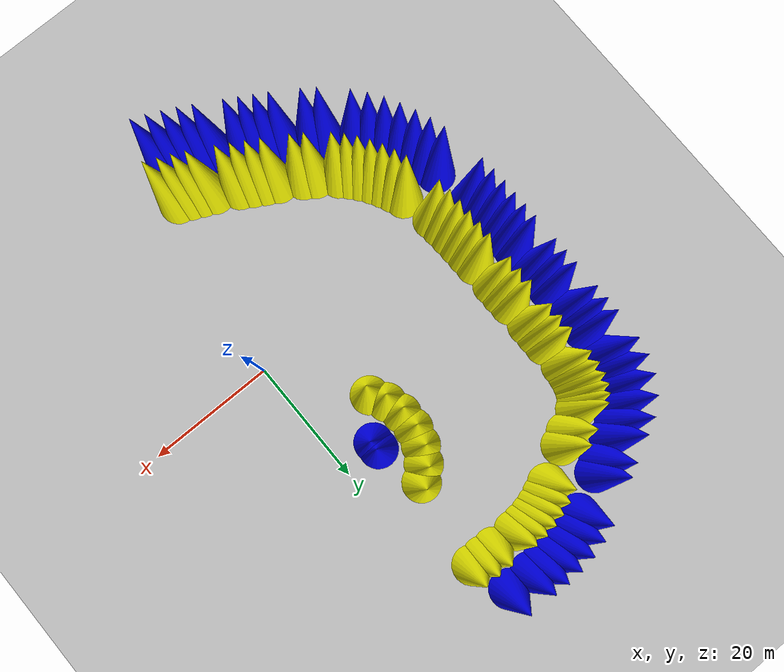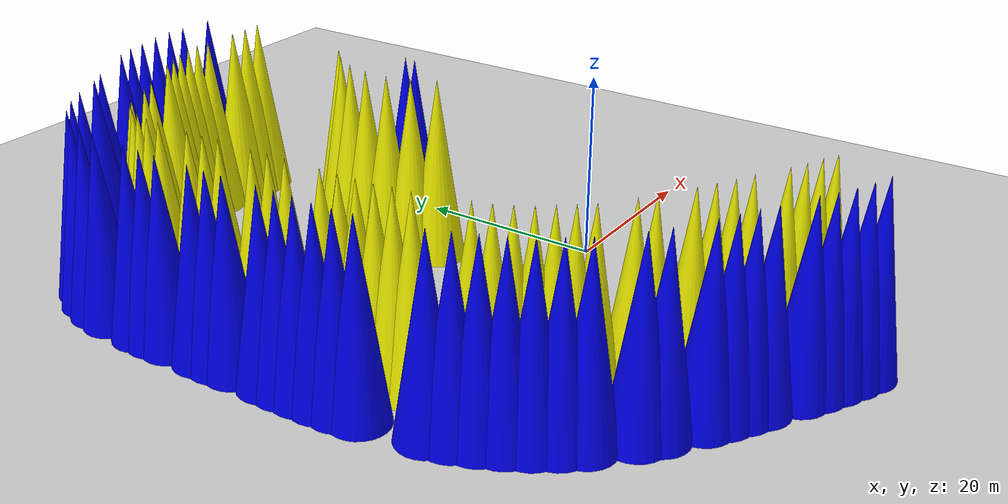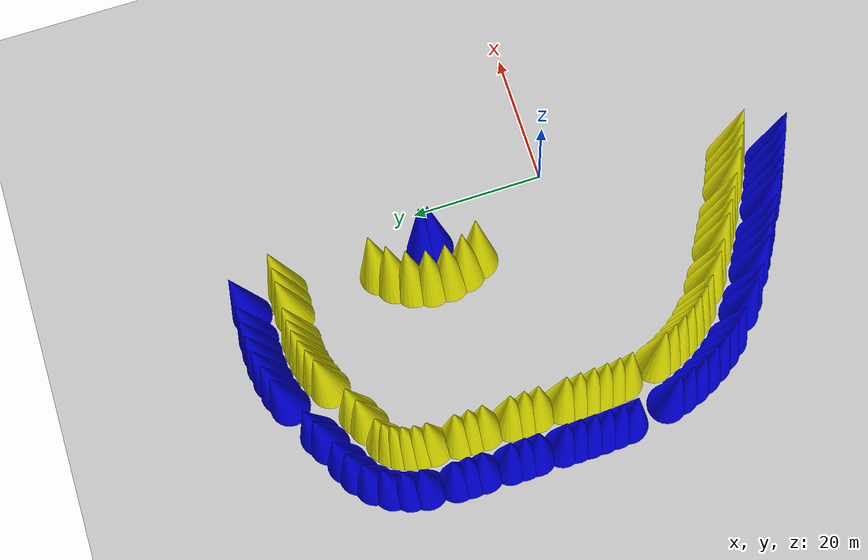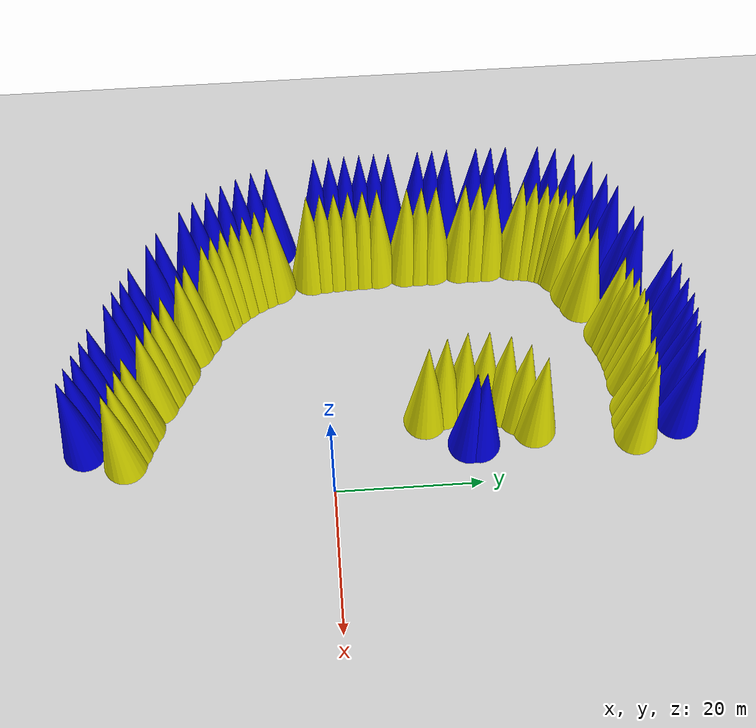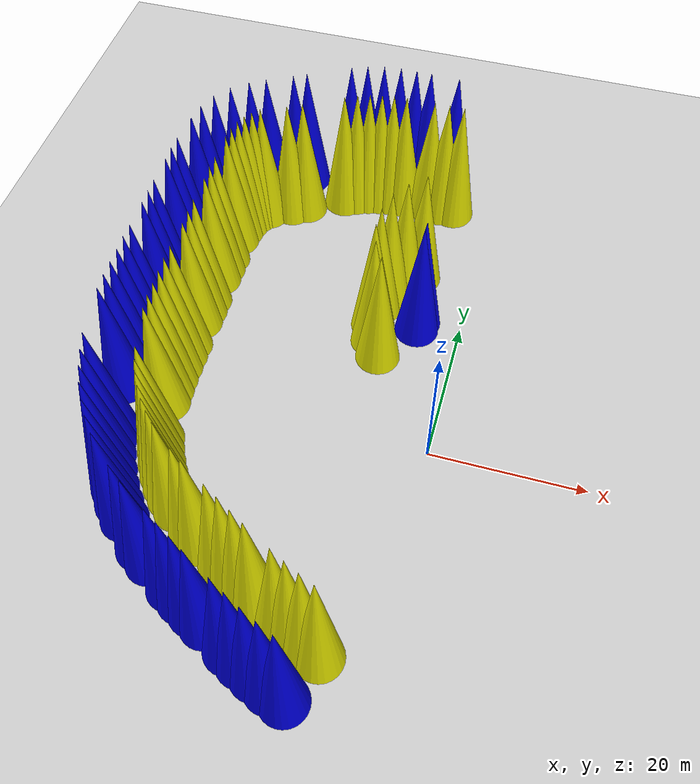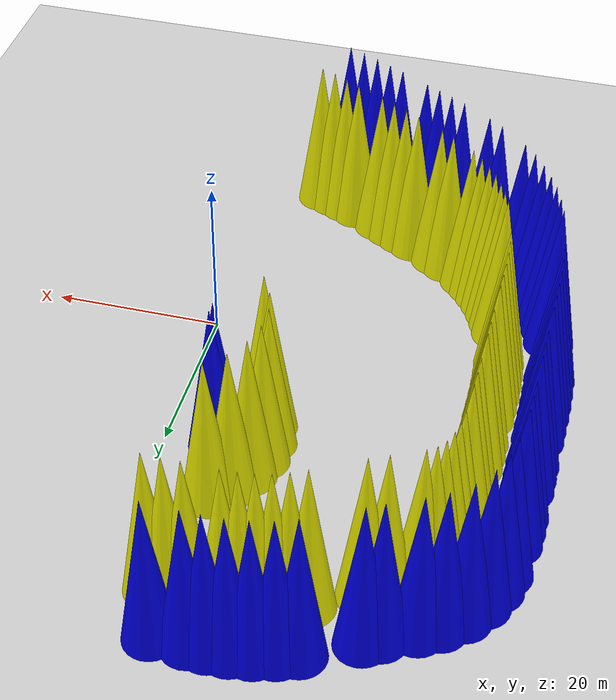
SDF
<sdf version="1.9">
 <world name="track">
  <model name="ground_plane">
   <static>true</static>
   <link name="link">
    <collision name="collision">
     <geometry><plane><normal>0 0 1</normal><size>100 100</size></plane></geometry>
    </collision>
    <visual name="visual">
     <geometry><plane><normal>0 0 1</normal><size>100 100</size></plane></geometry>
     <material>
      <ambient>0.8 0.8 0.8 1</ambient>
      <diffuse>0.8 0.8 0.8 1</diffuse>
      <specular>0.8 0.8 0.8 1</specular>
     </material>
    </visual>
    <inertial>
     <mass>1</mass>
     <inertia><ixx>1</ixx><ixy>0</ixy><ixz>0</ixz><iyy>1</iyy><iyz>0</iyz><izz>1</izz></inertia>
    </inertial>
   </link>
  </model>
  <model name="cones">
   <link name="cone_44_link">
    <collision name="cone_44_collision">
     <geometry><mesh><uri>model://cone/meshes/cone.stl</uri></mesh></geometry>
    </collision>
    <visual name="cone_44_visual">
     <geometry><mesh><uri>model://cone/meshes/cone.stl</uri></mesh></geometry>
     <material><ambient>1 1 0 1</ambient><diffuse>1 1 0 1</diffuse><specular>1 1 0 1</specular></material>
    </visual>
    <pose>-7.53032772904185 27.7630095130657 0.0 0 0 0</pose>
   </link>
   <link name="cone_45_link">
    <collision name="cone_45_collision">
     <geometry><mesh><uri>model://cone/meshes/cone.stl</uri></mesh></geometry>
    </collision>
    <visual name="cone_45_visual">
     <geometry><mesh><uri>model://cone/meshes/cone.stl</uri></mesh></geometry>
     <material><ambient>1 1 0 1</ambient><diffuse>1 1 0 1</diffuse><specular>1 1 0 1</specular></material>
    </visual>
    <pose>-9.55882345130782 25.8360602858122 0.0 0 0 0</pose>
   </link>
   <link name="cone_46_link">
    <collision name="cone_46_collision">
     <geometry><mesh><uri>model://cone/meshes/cone.stl</uri></mesh></geometry>
    </collision>
    <visual name="cone_46_visual">
     <geometry><mesh><uri>model://cone/meshes/cone.stl</uri></mesh></geometry>
     <material><ambient>1 1 0 1</ambient><diffuse>1 1 0 1</diffuse><specular>1 1 0 1</specular></material>
    </visual>
    <pose>-10.9967405848897 23.4446538263345 0.0 0 0 0</pose>
   </link>
   <link name="cone_47_link">
    <collision name="cone_47_collision">
     <geometry><mesh><uri>model://cone/meshes/cone.stl</uri></mesh></geometry>
    </collision>
    <visual name="cone_47_visual">
     <geometry><mesh><uri>model://cone/meshes/cone.stl</uri></mesh></geometry>
     <material><ambient>1 1 0 1</ambient><diffuse>1 1 0 1</diffuse><specular>1 1 0 1</specular></material>
    </visual>
    <pose>-11.7530941810305 20.7728147412547 0.0 0 0 0</pose>
   </link>
   <link name="cone_48_link">
    <collision name="cone_48_collision">
     <geometry><mesh><uri>model://cone/meshes/cone.stl</uri></mesh></geometry>
    </collision>
    <visual name="cone_48_visual">
     <geometry><mesh><uri>model://cone/meshes/cone.stl</uri></mesh></geometry>
     <material><ambient>1 1 0 1</ambient><diffuse>1 1 0 1</diffuse><specular>1 1 0 1</specular></material>
    </visual>
    <pose>-11.7945553145768 18.0098876247875 0.0 0 0 0</pose>
   </link>
   <link name="cone_49_link">
    <collision name="cone_49_collision">
     <geometry><mesh><uri>model://cone/meshes/cone.stl</uri></mesh></geometry>
    </collision>
    <visual name="cone_49_visual">
     <geometry><mesh><uri>model://cone/meshes/cone.stl</uri></mesh></geometry>
     <material><ambient>1 1 0 1</ambient><diffuse>1 1 0 1</diffuse><specular>1 1 0 1</specular></material>
    </visual>
    <pose>-11.1377067999357 15.3398589997259 0.0 0 0 0</pose>
   </link>
   <link name="cone_50_link">
    <collision name="cone_50_collision">
     <geometry><mesh><uri>model://cone/meshes/cone.stl</uri></mesh></geometry>
    </collision>
    <visual name="cone_50_visual">
     <geometry><mesh><uri>model://cone/meshes/cone.stl</uri></mesh></geometry>
     <material><ambient>1 1 0 1</ambient><diffuse>1 1 0 1</diffuse><specular>1 1 0 1</specular></material>
    </visual>
    <pose>-9.84329815385971 12.9293912425976 0.0 0 0 0</pose>
   </link>
   <link name="cone_97_link">
    <collision name="cone_97_collision">
     <geometry><mesh><uri>model://cone/meshes/cone.stl</uri></mesh></geometry>
    </collision>
    <visual name="cone_97_visual">
     <geometry><mesh><uri>model://cone/meshes/cone.stl</uri></mesh></geometry>
     <material><ambient>1 1 0 1</ambient><diffuse>1 1 0 1</diffuse><specular>1 1 0 1</specular></material>
    </visual>
    <pose>-5.8920216078647 -28.1122858460715 0.0 0 0 0</pose>
   </link>
   <link name="cone_98_link">
    <collision name="cone_98_collision">
     <geometry><mesh><uri>model://cone/meshes/cone.stl</uri></mesh></geometry>
    </collision>
    <visual name="cone_98_visual">
     <geometry><mesh><uri>model://cone/meshes/cone.stl</uri></mesh></geometry>
     <material><ambient>1 1 0 1</ambient><diffuse>1 1 0 1</diffuse><specular>1 1 0 1</specular></material>
    </visual>
    <pose>-7.65255868890126 -27.3645667343373 0.0 0 0 0</pose>
   </link>
   <link name="cone_99_link">
    <collision name="cone_99_collision">
     <geometry><mesh><uri>model://cone/meshes/cone.stl</uri></mesh></geometry>
    </collision>
    <visual name="cone_99_visual">
     <geometry><mesh><uri>model://cone/meshes/cone.stl</uri></mesh></geometry>
     <material><ambient>1 1 0 1</ambient><diffuse>1 1 0 1</diffuse><specular>1 1 0 1</specular></material>
    </visual>
    <pose>-9.3735582672942 -26.570622321206 0.0 0 0 0</pose>
   </link>
   <link name="cone_100_link">
    <collision name="cone_100_collision">
     <geometry><mesh><uri>model://cone/meshes/cone.stl</uri></mesh></geometry>
    </collision>
    <visual name="cone_100_visual">
     <geometry><mesh><uri>model://cone/meshes/cone.stl</uri></mesh></geometry>
     <material><ambient>1 1 0 1</ambient><diffuse>1 1 0 1</diffuse><specular>1 1 0 1</specular></material>
    </visual>
    <pose>-11.077254916009 -25.7164049091686 0.0 0 0 0</pose>
   </link>
   <link name="cone_101_link">
    <collision name="cone_101_collision">
     <geometry><mesh><uri>model://cone/meshes/cone.stl</uri></mesh></geometry>
    </collision>
    <visual name="cone_101_visual">
     <geometry><mesh><uri>model://cone/meshes/cone.stl</uri></mesh></geometry>
     <material><ambient>1 1 0 1</ambient><diffuse>1 1 0 1</diffuse><specular>1 1 0 1</specular></material>
    </visual>
    <pose>-14.4775165017317 -23.8562440887552 0.0 0 0 0</pose>
   </link>
   <link name="cone_102_link">
    <collision name="cone_102_collision">
     <geometry><mesh><uri>model://cone/meshes/cone.stl</uri></mesh></geometry>
    </collision>
    <visual name="cone_102_visual">
     <geometry><mesh><uri>model://cone/meshes/cone.stl</uri></mesh></geometry>
     <material><ambient>1 1 0 1</ambient><diffuse>1 1 0 1</diffuse><specular>1 1 0 1</specular></material>
    </visual>
    <pose>-16.185233511045 -22.8738429891042 0.0 0 0 0</pose>
   </link>
   <link name="cone_103_link">
    <collision name="cone_103_collision">
     <geometry><mesh><uri>model://cone/meshes/cone.stl</uri></mesh></geometry>
    </collision>
    <visual name="cone_103_visual">
     <geometry><mesh><uri>model://cone/meshes/cone.stl</uri></mesh></geometry>
     <material><ambient>1 1 0 1</ambient><diffuse>1 1 0 1</diffuse><specular>1 1 0 1</specular></material>
    </visual>
    <pose>-17.906698460143 -21.8724503885825 0.0 0 0 0</pose>
   </link>
   <link name="cone_104_link">
    <collision name="cone_104_collision">
     <geometry><mesh><uri>model://cone/meshes/cone.stl</uri></mesh></geometry>
    </collision>
    <visual name="cone_104_visual">
     <geometry><mesh><uri>model://cone/meshes/cone.stl</uri></mesh></geometry>
     <material><ambient>1 1 0 1</ambient><diffuse>1 1 0 1</diffuse><specular>1 1 0 1</specular></material>
    </visual>
    <pose>-19.628089973309 -20.8717543910881 0.0 0 0 0</pose>
   </link>
   <link name="cone_105_link">
    <collision name="cone_105_collision">
     <geometry><mesh><uri>model://cone/meshes/cone.stl</uri></mesh></geometry>
    </collision>
    <visual name="cone_105_visual">
     <geometry><mesh><uri>model://cone/meshes/cone.stl</uri></mesh></geometry>
     <material><ambient>1 1 0 1</ambient><diffuse>1 1 0 1</diffuse><specular>1 1 0 1</specular></material>
    </visual>
    <pose>-22.928385262226 -18.8697018891971 0.0 0 0 0</pose>
   </link>
   <link name="cone_106_link">
    <collision name="cone_106_collision">
     <geometry><mesh><uri>model://cone/meshes/cone.stl</uri></mesh></geometry>
    </collision>
    <visual name="cone_106_visual">
     <geometry><mesh><uri>model://cone/meshes/cone.stl</uri></mesh></geometry>
     <material><ambient>1 1 0 1</ambient><diffuse>1 1 0 1</diffuse><specular>1 1 0 1</specular></material>
    </visual>
    <pose>-24.4790807692059 -17.8277052050408 0.0 0 0 0</pose>
   </link>
   <link name="cone_107_link">
    <collision name="cone_107_collision">
     <geometry><mesh><uri>model://cone/meshes/cone.stl</uri></mesh></geometry>
    </collision>
    <visual name="cone_107_visual">
     <geometry><mesh><uri>model://cone/meshes/cone.stl</uri></mesh></geometry>
     <material><ambient>1 1 0 1</ambient><diffuse>1 1 0 1</diffuse><specular>1 1 0 1</specular></material>
    </visual>
    <pose>-27.3051265922114 -15.5801090683244 0.0 0 0 0</pose>
   </link>
   <link name="cone_108_link">
    <collision name="cone_108_collision">
     <geometry><mesh><uri>model://cone/meshes/cone.stl</uri></mesh></geometry>
    </collision>
    <visual name="cone_108_visual">
     <geometry><mesh><uri>model://cone/meshes/cone.stl</uri></mesh></geometry>
     <material><ambient>1 1 0 1</ambient><diffuse>1 1 0 1</diffuse><specular>1 1 0 1</specular></material>
    </visual>
    <pose>-28.5448479313762 -14.3530174024786 0.0 0 0 0</pose>
   </link>
   <link name="cone_109_link">
    <collision name="cone_109_collision">
     <geometry><mesh><uri>model://cone/meshes/cone.stl</uri></mesh></geometry>
    </collision>
    <visual name="cone_109_visual">
     <geometry><mesh><uri>model://cone/meshes/cone.stl</uri></mesh></geometry>
     <material><ambient>1 1 0 1</ambient><diffuse>1 1 0 1</diffuse><specular>1 1 0 1</specular></material>
    </visual>
    <pose>-29.6530218737847 -13.0404842531107 0.0 0 0 0</pose>
   </link>
   <link name="cone_110_link">
    <collision name="cone_110_collision">
     <geometry><mesh><uri>model://cone/meshes/cone.stl</uri></mesh></geometry>
    </collision>
    <visual name="cone_110_visual">
     <geometry><mesh><uri>model://cone/meshes/cone.stl</uri></mesh></geometry>
     <material><ambient>1 1 0 1</ambient><diffuse>1 1 0 1</diffuse><specular>1 1 0 1</specular></material>
    </visual>
    <pose>-30.6444406510768 -11.6234683085559 0.0 0 0 0</pose>
   </link>
   <link name="cone_111_link">
    <collision name="cone_111_collision">
     <geometry><mesh><uri>model://cone/meshes/cone.stl</uri></mesh></geometry>
    </collision>
    <visual name="cone_111_visual">
     <geometry><mesh><uri>model://cone/meshes/cone.stl</uri></mesh></geometry>
     <material><ambient>1 1 0 1</ambient><diffuse>1 1 0 1</diffuse><specular>1 1 0 1</specular></material>
    </visual>
    <pose>-31.5169602294234 -10.1146356600596 0.0 0 0 0</pose>
   </link>
   <link name="cone_112_link">
    <collision name="cone_112_collision">
     <geometry><mesh><uri>model://cone/meshes/cone.stl</uri></mesh></geometry>
    </collision>
    <visual name="cone_112_visual">
     <geometry><mesh><uri>model://cone/meshes/cone.stl</uri></mesh></geometry>
     <material><ambient>1 1 0 1</ambient><diffuse>1 1 0 1</diffuse><specular>1 1 0 1</specular></material>
    </visual>
    <pose>-32.2692264908853 -8.52739205631154 0.0 0 0 0</pose>
   </link>
   <link name="cone_113_link">
    <collision name="cone_113_collision">
     <geometry><mesh><uri>model://cone/meshes/cone.stl</uri></mesh></geometry>
    </collision>
    <visual name="cone_113_visual">
     <geometry><mesh><uri>model://cone/meshes/cone.stl</uri></mesh></geometry>
     <material><ambient>1 1 0 1</ambient><diffuse>1 1 0 1</diffuse><specular>1 1 0 1</specular></material>
    </visual>
    <pose>-32.9016624434539 -6.87420998418598 0.0 0 0 0</pose>
   </link>
   <link name="cone_114_link">
    <collision name="cone_114_collision">
     <geometry><mesh><uri>model://cone/meshes/cone.stl</uri></mesh></geometry>
    </collision>
    <visual name="cone_114_visual">
     <geometry><mesh><uri>model://cone/meshes/cone.stl</uri></mesh></geometry>
     <material><ambient>1 1 0 1</ambient><diffuse>1 1 0 1</diffuse><specular>1 1 0 1</specular></material>
    </visual>
    <pose>-34.1160057737752 -1.6080377618219 0.0 0 0 0</pose>
   </link>
   <link name="cone_115_link">
    <collision name="cone_115_collision">
     <geometry><mesh><uri>model://cone/meshes/cone.stl</uri></mesh></geometry>
    </collision>
    <visual name="cone_115_visual">
     <geometry><mesh><uri>model://cone/meshes/cone.stl</uri></mesh></geometry>
     <material><ambient>1 1 0 1</ambient><diffuse>1 1 0 1</diffuse><specular>1 1 0 1</specular></material>
    </visual>
    <pose>-34.3261608207142 0.237322459171913 0.0 0 0 0</pose>
   </link>
   <link name="cone_116_link">
    <collision name="cone_116_collision">
     <geometry><mesh><uri>model://cone/meshes/cone.stl</uri></mesh></geometry>
    </collision>
    <visual name="cone_116_visual">
     <geometry><mesh><uri>model://cone/meshes/cone.stl</uri></mesh></geometry>
     <material><ambient>1 1 0 1</ambient><diffuse>1 1 0 1</diffuse><specular>1 1 0 1</specular></material>
    </visual>
    <pose>-34.4624174228984 2.11880932640591 0.0 0 0 0</pose>
   </link>
   <link name="cone_117_link">
    <collision name="cone_117_collision">
     <geometry><mesh><uri>model://cone/meshes/cone.stl</uri></mesh></geometry>
    </collision>
    <visual name="cone_117_visual">
     <geometry><mesh><uri>model://cone/meshes/cone.stl</uri></mesh></geometry>
     <material><ambient>1 1 0 1</ambient><diffuse>1 1 0 1</diffuse><specular>1 1 0 1</specular></material>
    </visual>
    <pose>-34.5407037273032 4.03273612643633 0.0 0 0 0</pose>
   </link>
   <link name="cone_118_link">
    <collision name="cone_118_collision">
     <geometry><mesh><uri>model://cone/meshes/cone.stl</uri></mesh></geometry>
    </collision>
    <visual name="cone_118_visual">
     <geometry><mesh><uri>model://cone/meshes/cone.stl</uri></mesh></geometry>
     <material><ambient>1 1 0 1</ambient><diffuse>1 1 0 1</diffuse><specular>1 1 0 1</specular></material>
    </visual>
    <pose>-34.5779532171168 5.97700580252438 0.0 0 0 0</pose>
   </link>
   <link name="cone_119_link">
    <collision name="cone_119_collision">
     <geometry><mesh><uri>model://cone/meshes/cone.stl</uri></mesh></geometry>
    </collision>
    <visual name="cone_119_visual">
     <geometry><mesh><uri>model://cone/meshes/cone.stl</uri></mesh></geometry>
     <material><ambient>1 1 0 1</ambient><diffuse>1 1 0 1</diffuse><specular>1 1 0 1</specular></material>
    </visual>
    <pose>-34.5920061096721 7.95066706685753 0.0 0 0 0</pose>
   </link>
   <link name="cone_120_link">
    <collision name="cone_120_collision">
     <geometry><mesh><uri>model://cone/meshes/cone.stl</uri></mesh></geometry>
    </collision>
    <visual name="cone_120_visual">
     <geometry><mesh><uri>model://cone/meshes/cone.stl</uri></mesh></geometry>
     <material><ambient>1 1 0 1</ambient><diffuse>1 1 0 1</diffuse><specular>1 1 0 1</specular></material>
    </visual>
    <pose>-34.6203010935088 11.9628384547546 0.0 0 0 0</pose>
   </link>
   <link name="cone_121_link">
    <collision name="cone_121_collision">
     <geometry><mesh><uri>model://cone/meshes/cone.stl</uri></mesh></geometry>
    </collision>
    <visual name="cone_121_visual">
     <geometry><mesh><uri>model://cone/meshes/cone.stl</uri></mesh></geometry>
     <material><ambient>1 1 0 1</ambient><diffuse>1 1 0 1</diffuse><specular>1 1 0 1</specular></material>
    </visual>
    <pose>-34.6463516562825 13.9656473217268 0.0 0 0 0</pose>
   </link>
   <link name="cone_122_link">
    <collision name="cone_122_collision">
     <geometry><mesh><uri>model://cone/meshes/cone.stl</uri></mesh></geometry>
    </collision>
    <visual name="cone_122_visual">
     <geometry><mesh><uri>model://cone/meshes/cone.stl</uri></mesh></geometry>
     <material><ambient>1 1 0 1</ambient><diffuse>1 1 0 1</diffuse><specular>1 1 0 1</specular></material>
    </visual>
    <pose>-34.6751545298116 15.9616504117489 0.0 0 0 0</pose>
   </link>
   <link name="cone_123_link">
    <collision name="cone_123_collision">
     <geometry><mesh><uri>model://cone/meshes/cone.stl</uri></mesh></geometry>
    </collision>
    <visual name="cone_123_visual">
     <geometry><mesh><uri>model://cone/meshes/cone.stl</uri></mesh></geometry>
     <material><ambient>1 1 0 1</ambient><diffuse>1 1 0 1</diffuse><specular>1 1 0 1</specular></material>
    </visual>
    <pose>-34.7230350194217 19.933473343198 0.0 0 0 0</pose>
   </link>
   <link name="cone_124_link">
    <collision name="cone_124_collision">
     <geometry><mesh><uri>model://cone/meshes/cone.stl</uri></mesh></geometry>
    </collision>
    <visual name="cone_124_visual">
     <geometry><mesh><uri>model://cone/meshes/cone.stl</uri></mesh></geometry>
     <material><ambient>1 1 0 1</ambient><diffuse>1 1 0 1</diffuse><specular>1 1 0 1</specular></material>
    </visual>
    <pose>-34.7332354577762 21.9093507078716 0.0 0 0 0</pose>
   </link>
   <link name="cone_125_link">
    <collision name="cone_125_collision">
     <geometry><mesh><uri>model://cone/meshes/cone.stl</uri></mesh></geometry>
    </collision>
    <visual name="cone_125_visual">
     <geometry><mesh><uri>model://cone/meshes/cone.stl</uri></mesh></geometry>
     <material><ambient>1 1 0 1</ambient><diffuse>1 1 0 1</diffuse><specular>1 1 0 1</specular></material>
    </visual>
    <pose>-34.728433845112 23.8784778261844 0.0 0 0 0</pose>
   </link>
   <link name="cone_126_link">
    <collision name="cone_126_collision">
     <geometry><mesh><uri>model://cone/meshes/cone.stl</uri></mesh></geometry>
    </collision>
    <visual name="cone_126_visual">
     <geometry><mesh><uri>model://cone/meshes/cone.stl</uri></mesh></geometry>
     <material><ambient>1 1 0 1</ambient><diffuse>1 1 0 1</diffuse><specular>1 1 0 1</specular></material>
    </visual>
    <pose>-34.6466389854161 27.7320065787716 0.0 0 0 0</pose>
   </link>
   <link name="cone_127_link">
    <collision name="cone_127_collision">
     <geometry><mesh><uri>model://cone/meshes/cone.stl</uri></mesh></geometry>
    </collision>
    <visual name="cone_127_visual">
     <geometry><mesh><uri>model://cone/meshes/cone.stl</uri></mesh></geometry>
     <material><ambient>1 1 0 1</ambient><diffuse>1 1 0 1</diffuse><specular>1 1 0 1</specular></material>
    </visual>
    <pose>-34.4887912178893 29.4532110956616 0.0 0 0 0</pose>
   </link>
   <link name="cone_128_link">
    <collision name="cone_128_collision">
     <geometry><mesh><uri>model://cone/meshes/cone.stl</uri></mesh></geometry>
    </collision>
    <visual name="cone_128_visual">
     <geometry><mesh><uri>model://cone/meshes/cone.stl</uri></mesh></geometry>
     <material><ambient>1 1 0 1</ambient><diffuse>1 1 0 1</diffuse><specular>1 1 0 1</specular></material>
    </visual>
    <pose>-34.1674004338218 30.9833511541837 0.0 0 0 0</pose>
   </link>
   <link name="cone_129_link">
    <collision name="cone_129_collision">
     <geometry><mesh><uri>model://cone/meshes/cone.stl</uri></mesh></geometry>
    </collision>
    <visual name="cone_129_visual">
     <geometry><mesh><uri>model://cone/meshes/cone.stl</uri></mesh></geometry>
     <material><ambient>1 1 0 1</ambient><diffuse>1 1 0 1</diffuse><specular>1 1 0 1</specular></material>
    </visual>
    <pose>-33.6523388115164 32.2835000565933 0.0 0 0 0</pose>
   </link>
   <link name="cone_130_link">
    <collision name="cone_130_collision">
     <geometry><mesh><uri>model://cone/meshes/cone.stl</uri></mesh></geometry>
    </collision>
    <visual name="cone_130_visual">
     <geometry><mesh><uri>model://cone/meshes/cone.stl</uri></mesh></geometry>
     <material><ambient>1 1 0 1</ambient><diffuse>1 1 0 1</diffuse><specular>1 1 0 1</specular></material>
    </visual>
    <pose>-32.9540435069214 33.3001054449054 0.0 0 0 0</pose>
   </link>
   <link name="cone_131_link">
    <collision name="cone_131_collision">
     <geometry><mesh><uri>model://cone/meshes/cone.stl</uri></mesh></geometry>
    </collision>
    <visual name="cone_131_visual">
     <geometry><mesh><uri>model://cone/meshes/cone.stl</uri></mesh></geometry>
     <material><ambient>1 1 0 1</ambient><diffuse>1 1 0 1</diffuse><specular>1 1 0 1</specular></material>
    </visual>
    <pose>-32.0153881487289 34.0792118997941 0.0 0 0 0</pose>
   </link>
   <link name="cone_132_link">
    <collision name="cone_132_collision">
     <geometry><mesh><uri>model://cone/meshes/cone.stl</uri></mesh></geometry>
    </collision>
    <visual name="cone_132_visual">
     <geometry><mesh><uri>model://cone/meshes/cone.stl</uri></mesh></geometry>
     <material><ambient>1 1 0 1</ambient><diffuse>1 1 0 1</diffuse><specular>1 1 0 1</specular></material>
    </visual>
    <pose>-28.7867224485036 35.7027232116937 0.0 0 0 0</pose>
   </link>
   <link name="cone_133_link">
    <collision name="cone_133_collision">
     <geometry><mesh><uri>model://cone/meshes/cone.stl</uri></mesh></geometry>
    </collision>
    <visual name="cone_133_visual">
     <geometry><mesh><uri>model://cone/meshes/cone.stl</uri></mesh></geometry>
     <material><ambient>1 1 0 1</ambient><diffuse>1 1 0 1</diffuse><specular>1 1 0 1</specular></material>
    </visual>
    <pose>-26.87370749476 36.7067299514829 0.0 0 0 0</pose>
   </link>
   <link name="cone_134_link">
    <collision name="cone_134_collision">
     <geometry><mesh><uri>model://cone/meshes/cone.stl</uri></mesh></geometry>
    </collision>
    <visual name="cone_134_visual">
     <geometry><mesh><uri>model://cone/meshes/cone.stl</uri></mesh></geometry>
     <material><ambient>1 1 0 1</ambient><diffuse>1 1 0 1</diffuse><specular>1 1 0 1</specular></material>
    </visual>
    <pose>-21.7623826032159 39.595866321033 0.0 0 0 0</pose>
   </link>
   <link name="cone_135_link">
    <collision name="cone_135_collision">
     <geometry><mesh><uri>model://cone/meshes/cone.stl</uri></mesh></geometry>
    </collision>
    <visual name="cone_135_visual">
     <geometry><mesh><uri>model://cone/meshes/cone.stl</uri></mesh></geometry>
     <material><ambient>1 1 0 1</ambient><diffuse>1 1 0 1</diffuse><specular>1 1 0 1</specular></material>
    </visual>
    <pose>-20.1418625665089 40.3549987041733 0.0 0 0 0</pose>
   </link>
   <link name="cone_136_link">
    <collision name="cone_136_collision">
     <geometry><mesh><uri>model://cone/meshes/cone.stl</uri></mesh></geometry>
    </collision>
    <visual name="cone_136_visual">
     <geometry><mesh><uri>model://cone/meshes/cone.stl</uri></mesh></geometry>
     <material><ambient>1 1 0 1</ambient><diffuse>1 1 0 1</diffuse><specular>1 1 0 1</specular></material>
    </visual>
    <pose>-18.5286281071084 40.9596629960629 0.0 0 0 0</pose>
   </link>
   <link name="cone_137_link">
    <collision name="cone_137_collision">
     <geometry><mesh><uri>model://cone/meshes/cone.stl</uri></mesh></geometry>
    </collision>
    <visual name="cone_137_visual">
     <geometry><mesh><uri>model://cone/meshes/cone.stl</uri></mesh></geometry>
     <material><ambient>1 1 0 1</ambient><diffuse>1 1 0 1</diffuse><specular>1 1 0 1</specular></material>
    </visual>
    <pose>-16.9269162480936 41.3805845888608 0.0 0 0 0</pose>
   </link>
   <link name="cone_138_link">
    <collision name="cone_138_collision">
     <geometry><mesh><uri>model://cone/meshes/cone.stl</uri></mesh></geometry>
    </collision>
    <visual name="cone_138_visual">
     <geometry><mesh><uri>model://cone/meshes/cone.stl</uri></mesh></geometry>
     <material><ambient>1 1 0 1</ambient><diffuse>1 1 0 1</diffuse><specular>1 1 0 1</specular></material>
    </visual>
    <pose>-15.2947586791386 41.6060043323431 0.0 0 0 0</pose>
   </link>
   <link name="cone_139_link">
    <collision name="cone_139_collision">
     <geometry><mesh><uri>model://cone/meshes/cone.stl</uri></mesh></geometry>
    </collision>
    <visual name="cone_139_visual">
     <geometry><mesh><uri>model://cone/meshes/cone.stl</uri></mesh></geometry>
     <material><ambient>1 1 0 1</ambient><diffuse>1 1 0 1</diffuse><specular>1 1 0 1</specular></material>
    </visual>
    <pose>-13.5312107482484 41.6777684016896 0.0 0 0 0</pose>
   </link>
   <link name="cone_140_link">
    <collision name="cone_140_collision">
     <geometry><mesh><uri>model://cone/meshes/cone.stl</uri></mesh></geometry>
    </collision>
    <visual name="cone_140_visual">
     <geometry><mesh><uri>model://cone/meshes/cone.stl</uri></mesh></geometry>
     <material><ambient>1 1 0 1</ambient><diffuse>1 1 0 1</diffuse><specular>1 1 0 1</specular></material>
    </visual>
    <pose>-9.64289482747188 41.5853268011948 0.0 0 0 0</pose>
   </link>
   <link name="cone_141_link">
    <collision name="cone_141_collision">
     <geometry><mesh><uri>model://cone/meshes/cone.stl</uri></mesh></geometry>
    </collision>
    <visual name="cone_141_visual">
     <geometry><mesh><uri>model://cone/meshes/cone.stl</uri></mesh></geometry>
     <material><ambient>1 1 0 1</ambient><diffuse>1 1 0 1</diffuse><specular>1 1 0 1</specular></material>
    </visual>
    <pose>-7.61112976471737 41.5421552074769 0.0 0 0 0</pose>
   </link>
   <link name="cone_142_link">
    <collision name="cone_142_collision">
     <geometry><mesh><uri>model://cone/meshes/cone.stl</uri></mesh></geometry>
    </collision>
    <visual name="cone_142_visual">
     <geometry><mesh><uri>model://cone/meshes/cone.stl</uri></mesh></geometry>
     <material><ambient>1 1 0 1</ambient><diffuse>1 1 0 1</diffuse><specular>1 1 0 1</specular></material>
    </visual>
    <pose>-5.58318659783131 41.5226049040385 0.0 0 0 0</pose>
   </link>
   <link name="cone_46_link">
    <collision name="cone_46_collision">
     <geometry><mesh><uri>model://cone/meshes/cone.stl</uri></mesh></geometry>
    </collision>
    <visual name="cone_46_visual">
     <geometry><mesh><uri>model://cone/meshes/cone.stl</uri></mesh></geometry>
     <material><ambient>0 0 1 1</ambient><diffuse>0 0 1 1</diffuse><specular>0 0 1 1</specular></material>
    </visual>
    <pose>-5.81567263287249 19.9085084532591 0.0 0 0 0</pose>
   </link>
   <link name="cone_47_link">
    <collision name="cone_47_collision">
     <geometry><mesh><uri>model://cone/meshes/cone.stl</uri></mesh></geometry>
    </collision>
    <visual name="cone_47_visual">
     <geometry><mesh><uri>model://cone/meshes/cone.stl</uri></mesh></geometry>
     <material><ambient>0 0 1 1</ambient><diffuse>0 0 1 1</diffuse><specular>0 0 1 1</specular></material>
    </visual>
    <pose>-5.8334919233918 18.6923268134878 0.0 0 0 0</pose>
   </link>
   <link name="cone_96_link">
    <collision name="cone_96_collision">
     <geometry><mesh><uri>model://cone/meshes/cone.stl</uri></mesh></geometry>
    </collision>
    <visual name="cone_96_visual">
     <geometry><mesh><uri>model://cone/meshes/cone.stl</uri></mesh></geometry>
     <material><ambient>0 0 1 1</ambient><diffuse>0 0 1 1</diffuse><specular>0 0 1 1</specular></material>
    </visual>
    <pose>-8.16436000121084 -33.6653461038145 0.0 0 0 0</pose>
   </link>
   <link name="cone_97_link">
    <collision name="cone_97_collision">
     <geometry><mesh><uri>model://cone/meshes/cone.stl</uri></mesh></geometry>
    </collision>
    <visual name="cone_97_visual">
     <geometry><mesh><uri>model://cone/meshes/cone.stl</uri></mesh></geometry>
     <material><ambient>0 0 1 1</ambient><diffuse>0 0 1 1</diffuse><specular>0 0 1 1</specular></material>
    </visual>
    <pose>-10.0767778404464 -32.8530238495275 0.0 0 0 0</pose>
   </link>
   <link name="cone_98_link">
    <collision name="cone_98_collision">
     <geometry><mesh><uri>model://cone/meshes/cone.stl</uri></mesh></geometry>
    </collision>
    <visual name="cone_98_visual">
     <geometry><mesh><uri>model://cone/meshes/cone.stl</uri></mesh></geometry>
     <material><ambient>0 0 1 1</ambient><diffuse>0 0 1 1</diffuse><specular>0 0 1 1</specular></material>
    </visual>
    <pose>-11.9792230934156 -31.9752972248347 0.0 0 0 0</pose>
   </link>
   <link name="cone_99_link">
    <collision name="cone_99_collision">
     <geometry><mesh><uri>model://cone/meshes/cone.stl</uri></mesh></geometry>
    </collision>
    <visual name="cone_99_visual">
     <geometry><mesh><uri>model://cone/meshes/cone.stl</uri></mesh></geometry>
     <material><ambient>0 0 1 1</ambient><diffuse>0 0 1 1</diffuse><specular>0 0 1 1</specular></material>
    </visual>
    <pose>-13.8428086034457 -31.0410375539532 0.0 0 0 0</pose>
   </link>
   <link name="cone_100_link">
    <collision name="cone_100_collision">
     <geometry><mesh><uri>model://cone/meshes/cone.stl</uri></mesh></geometry>
    </collision>
    <visual name="cone_100_visual">
     <geometry><mesh><uri>model://cone/meshes/cone.stl</uri></mesh></geometry>
     <material><ambient>0 0 1 1</ambient><diffuse>0 0 1 1</diffuse><specular>0 0 1 1</specular></material>
    </visual>
    <pose>-15.6623928384561 -30.0682796038662 0.0 0 0 0</pose>
   </link>
   <link name="cone_101_link">
    <collision name="cone_101_collision">
     <geometry><mesh><uri>model://cone/meshes/cone.stl</uri></mesh></geometry>
    </collision>
    <visual name="cone_101_visual">
     <geometry><mesh><uri>model://cone/meshes/cone.stl</uri></mesh></geometry>
     <material><ambient>0 0 1 1</ambient><diffuse>0 0 1 1</diffuse><specular>0 0 1 1</specular></material>
    </visual>
    <pose>-19.1958077261686 -28.0638760232219 0.0 0 0 0</pose>
   </link>
   <link name="cone_102_link">
    <collision name="cone_102_collision">
     <geometry><mesh><uri>model://cone/meshes/cone.stl</uri></mesh></geometry>
    </collision>
    <visual name="cone_102_visual">
     <geometry><mesh><uri>model://cone/meshes/cone.stl</uri></mesh></geometry>
     <material><ambient>0 0 1 1</ambient><diffuse>0 0 1 1</diffuse><specular>0 0 1 1</specular></material>
    </visual>
    <pose>-20.9238240938196 -27.0586776214187 0.0 0 0 0</pose>
   </link>
   <link name="cone_103_link">
    <collision name="cone_103_collision">
     <geometry><mesh><uri>model://cone/meshes/cone.stl</uri></mesh></geometry>
    </collision>
    <visual name="cone_103_visual">
     <geometry><mesh><uri>model://cone/meshes/cone.stl</uri></mesh></geometry>
     <material><ambient>0 0 1 1</ambient><diffuse>0 0 1 1</diffuse><specular>0 0 1 1</specular></material>
    </visual>
    <pose>-22.6524765196268 -26.0537507263292 0.0 0 0 0</pose>
   </link>
   <link name="cone_104_link">
    <collision name="cone_104_collision">
     <geometry><mesh><uri>model://cone/meshes/cone.stl</uri></mesh></geometry>
    </collision>
    <visual name="cone_104_visual">
     <geometry><mesh><uri>model://cone/meshes/cone.stl</uri></mesh></geometry>
     <material><ambient>0 0 1 1</ambient><diffuse>0 0 1 1</diffuse><specular>0 0 1 1</specular></material>
    </visual>
    <pose>-24.4077080359509 -25.0144494209715 0.0 0 0 0</pose>
   </link>
   <link name="cone_105_link">
    <collision name="cone_105_collision">
     <geometry><mesh><uri>model://cone/meshes/cone.stl</uri></mesh></geometry>
    </collision>
    <visual name="cone_105_visual">
     <geometry><mesh><uri>model://cone/meshes/cone.stl</uri></mesh></geometry>
     <material><ambient>0 0 1 1</ambient><diffuse>0 0 1 1</diffuse><specular>0 0 1 1</specular></material>
    </visual>
    <pose>-27.9360780875981 -22.7317004681533 0.0 0 0 0</pose>
   </link>
   <link name="cone_106_link">
    <collision name="cone_106_collision">
     <geometry><mesh><uri>model://cone/meshes/cone.stl</uri></mesh></geometry>
    </collision>
    <visual name="cone_106_visual">
     <geometry><mesh><uri>model://cone/meshes/cone.stl</uri></mesh></geometry>
     <material><ambient>0 0 1 1</ambient><diffuse>0 0 1 1</diffuse><specular>0 0 1 1</specular></material>
    </visual>
    <pose>-29.6698538901663 -21.4381474644069 0.0 0 0 0</pose>
   </link>
   <link name="cone_107_link">
    <collision name="cone_107_collision">
     <geometry><mesh><uri>model://cone/meshes/cone.stl</uri></mesh></geometry>
    </collision>
    <visual name="cone_107_visual">
     <geometry><mesh><uri>model://cone/meshes/cone.stl</uri></mesh></geometry>
     <material><ambient>0 0 1 1</ambient><diffuse>0 0 1 1</diffuse><specular>0 0 1 1</specular></material>
    </visual>
    <pose>-32.9453564203185 -18.4316844689044 0.0 0 0 0</pose>
   </link>
   <link name="cone_108_link">
    <collision name="cone_108_collision">
     <geometry><mesh><uri>model://cone/meshes/cone.stl</uri></mesh></geometry>
    </collision>
    <visual name="cone_108_visual">
     <geometry><mesh><uri>model://cone/meshes/cone.stl</uri></mesh></geometry>
     <material><ambient>0 0 1 1</ambient><diffuse>0 0 1 1</diffuse><specular>0 0 1 1</specular></material>
    </visual>
    <pose>-34.4107565227371 -16.6961594315364 0.0 0 0 0</pose>
   </link>
   <link name="cone_109_link">
    <collision name="cone_109_collision">
     <geometry><mesh><uri>model://cone/meshes/cone.stl</uri></mesh></geometry>
    </collision>
    <visual name="cone_109_visual">
     <geometry><mesh><uri>model://cone/meshes/cone.stl</uri></mesh></geometry>
     <material><ambient>0 0 1 1</ambient><diffuse>0 0 1 1</diffuse><specular>0 0 1 1</specular></material>
    </visual>
    <pose>-35.7065080013589 -14.844566590386 0.0 0 0 0</pose>
   </link>
   <link name="cone_110_link">
    <collision name="cone_110_collision">
     <geometry><mesh><uri>model://cone/meshes/cone.stl</uri></mesh></geometry>
    </collision>
    <visual name="cone_110_visual">
     <geometry><mesh><uri>model://cone/meshes/cone.stl</uri></mesh></geometry>
     <material><ambient>0 0 1 1</ambient><diffuse>0 0 1 1</diffuse><specular>0 0 1 1</specular></material>
    </visual>
    <pose>-36.8313109009813 -12.8998963192641 0.0 0 0 0</pose>
   </link>
   <link name="cone_111_link">
    <collision name="cone_111_collision">
     <geometry><mesh><uri>model://cone/meshes/cone.stl</uri></mesh></geometry>
    </collision>
    <visual name="cone_111_visual">
     <geometry><mesh><uri>model://cone/meshes/cone.stl</uri></mesh></geometry>
     <material><ambient>0 0 1 1</ambient><diffuse>0 0 1 1</diffuse><specular>0 0 1 1</specular></material>
    </visual>
    <pose>-37.7878917266941 -10.8820330087871 0.0 0 0 0</pose>
   </link>
   <link name="cone_112_link">
    <collision name="cone_112_collision">
     <geometry><mesh><uri>model://cone/meshes/cone.stl</uri></mesh></geometry>
    </collision>
    <visual name="cone_112_visual">
     <geometry><mesh><uri>model://cone/meshes/cone.stl</uri></mesh></geometry>
     <material><ambient>0 0 1 1</ambient><diffuse>0 0 1 1</diffuse><specular>0 0 1 1</specular></material>
    </visual>
    <pose>-38.5811746376266 -8.808929921604 0.0 0 0 0</pose>
   </link>
   <link name="cone_113_link">
    <collision name="cone_113_collision">
     <geometry><mesh><uri>model://cone/meshes/cone.stl</uri></mesh></geometry>
    </collision>
    <visual name="cone_113_visual">
     <geometry><mesh><uri>model://cone/meshes/cone.stl</uri></mesh></geometry>
     <material><ambient>0 0 1 1</ambient><diffuse>0 0 1 1</diffuse><specular>0 0 1 1</specular></material>
    </visual>
    <pose>-39.2178699842561 -6.69652639898087 0.0 0 0 0</pose>
   </link>
   <link name="cone_114_link">
    <collision name="cone_114_collision">
     <geometry><mesh><uri>model://cone/meshes/cone.stl</uri></mesh></geometry>
    </collision>
    <visual name="cone_114_visual">
     <geometry><mesh><uri>model://cone/meshes/cone.stl</uri></mesh></geometry>
     <material><ambient>0 0 1 1</ambient><diffuse>0 0 1 1</diffuse><specular>0 0 1 1</specular></material>
    </visual>
    <pose>-40.3011807339499 -0.309611756649864 0.0 0 0 0</pose>
   </link>
   <link name="cone_115_link">
    <collision name="cone_115_collision">
     <geometry><mesh><uri>model://cone/meshes/cone.stl</uri></mesh></geometry>
    </collision>
    <visual name="cone_115_visual">
     <geometry><mesh><uri>model://cone/meshes/cone.stl</uri></mesh></geometry>
     <material><ambient>0 0 1 1</ambient><diffuse>0 0 1 1</diffuse><specular>0 0 1 1</specular></material>
    </visual>
    <pose>-40.4533406202231 1.78890139416343 0.0 0 0 0</pose>
   </link>
   <link name="cone_116_link">
    <collision name="cone_116_collision">
     <geometry><mesh><uri>model://cone/meshes/cone.stl</uri></mesh></geometry>
    </collision>
    <visual name="cone_116_visual">
     <geometry><mesh><uri>model://cone/meshes/cone.stl</uri></mesh></geometry>
     <material><ambient>0 0 1 1</ambient><diffuse>0 0 1 1</diffuse><specular>0 0 1 1</specular></material>
    </visual>
    <pose>-40.5382789183978 3.86217286202336 0.0 0 0 0</pose>
   </link>
   <link name="cone_117_link">
    <collision name="cone_117_collision">
     <geometry><mesh><uri>model://cone/meshes/cone.stl</uri></mesh></geometry>
    </collision>
    <visual name="cone_117_visual">
     <geometry><mesh><uri>model://cone/meshes/cone.stl</uri></mesh></geometry>
     <material><ambient>0 0 1 1</ambient><diffuse>0 0 1 1</diffuse><specular>0 0 1 1</specular></material>
    </visual>
    <pose>-40.5775538214583 5.90777727960811 0.0 0 0 0</pose>
   </link>
   <link name="cone_118_link">
    <collision name="cone_118_collision">
     <geometry><mesh><uri>model://cone/meshes/cone.stl</uri></mesh></geometry>
    </collision>
    <visual name="cone_118_visual">
     <geometry><mesh><uri>model://cone/meshes/cone.stl</uri></mesh></geometry>
     <material><ambient>0 0 1 1</ambient><diffuse>0 0 1 1</diffuse><specular>0 0 1 1</specular></material>
    </visual>
    <pose>-40.5919497511314 7.92466131148779 0.0 0 0 0</pose>
   </link>
   <link name="cone_119_link">
    <collision name="cone_119_collision">
     <geometry><mesh><uri>model://cone/meshes/cone.stl</uri></mesh></geometry>
    </collision>
    <visual name="cone_119_visual">
     <geometry><mesh><uri>model://cone/meshes/cone.stl</uri></mesh></geometry>
     <material><ambient>0 0 1 1</ambient><diffuse>0 0 1 1</diffuse><specular>0 0 1 1</specular></material>
    </visual>
    <pose>-40.6014196538181 9.91275631233656 0.0 0 0 0</pose>
   </link>
   <link name="cone_120_link">
    <collision name="cone_120_collision">
     <geometry><mesh><uri>model://cone/meshes/cone.stl</uri></mesh></geometry>
    </collision>
    <visual name="cone_120_visual">
     <geometry><mesh><uri>model://cone/meshes/cone.stl</uri></mesh></geometry>
     <material><ambient>0 0 1 1</ambient><diffuse>0 0 1 1</diffuse><specular>0 0 1 1</specular></material>
    </visual>
    <pose>-40.6457557289961 13.8810850824754 0.0 0 0 0</pose>
   </link>
   <link name="cone_121_link">
    <collision name="cone_121_collision">
     <geometry><mesh><uri>model://cone/meshes/cone.stl</uri></mesh></geometry>
    </collision>
    <visual name="cone_121_visual">
     <geometry><mesh><uri>model://cone/meshes/cone.stl</uri></mesh></geometry>
     <material><ambient>0 0 1 1</ambient><diffuse>0 0 1 1</diffuse><specular>0 0 1 1</specular></material>
    </visual>
    <pose>-40.674533449872 15.8753221224371 0.0 0 0 0</pose>
   </link>
   <link name="cone_122_link">
    <collision name="cone_122_collision">
     <geometry><mesh><uri>model://cone/meshes/cone.stl</uri></mesh></geometry>
    </collision>
    <visual name="cone_122_visual">
     <geometry><mesh><uri>model://cone/meshes/cone.stl</uri></mesh></geometry>
     <material><ambient>0 0 1 1</ambient><diffuse>0 0 1 1</diffuse><specular>0 0 1 1</specular></material>
    </visual>
    <pose>-40.7017394704418 17.8763494567535 0.0 0 0 0</pose>
   </link>
   <link name="cone_123_link">
    <collision name="cone_123_collision">
     <geometry><mesh><uri>model://cone/meshes/cone.stl</uri></mesh></geometry>
    </collision>
    <visual name="cone_123_visual">
     <geometry><mesh><uri>model://cone/meshes/cone.stl</uri></mesh></geometry>
     <material><ambient>0 0 1 1</ambient><diffuse>0 0 1 1</diffuse><specular>0 0 1 1</specular></material>
    </visual>
    <pose>-40.7332264185658 21.898935793423 0.0 0 0 0</pose>
   </link>
   <link name="cone_124_link">
    <collision name="cone_124_collision">
     <geometry><mesh><uri>model://cone/meshes/cone.stl</uri></mesh></geometry>
    </collision>
    <visual name="cone_124_visual">
     <geometry><mesh><uri>model://cone/meshes/cone.stl</uri></mesh></geometry>
     <material><ambient>0 0 1 1</ambient><diffuse>0 0 1 1</diffuse><specular>0 0 1 1</specular></material>
    </visual>
    <pose>-40.7282871101318 23.9204396925825 0.0 0 0 0</pose>
   </link>
   <link name="cone_125_link">
    <collision name="cone_125_collision">
     <geometry><mesh><uri>model://cone/meshes/cone.stl</uri></mesh></geometry>
    </collision>
    <visual name="cone_125_visual">
     <geometry><mesh><uri>model://cone/meshes/cone.stl</uri></mesh></geometry>
     <material><ambient>0 0 1 1</ambient><diffuse>0 0 1 1</diffuse><specular>0 0 1 1</specular></material>
    </visual>
    <pose>-40.7033369152928 25.948560300907 0.0 0 0 0</pose>
   </link>
   <link name="cone_126_link">
    <collision name="cone_126_collision">
     <geometry><mesh><uri>model://cone/meshes/cone.stl</uri></mesh></geometry>
    </collision>
    <visual name="cone_126_visual">
     <geometry><mesh><uri>model://cone/meshes/cone.stl</uri></mesh></geometry>
     <material><ambient>0 0 1 1</ambient><diffuse>0 0 1 1</diffuse><specular>0 0 1 1</specular></material>
    </visual>
    <pose>-40.429160406945 30.2970202551981 0.0 0 0 0</pose>
   </link>
   <link name="cone_127_link">
    <collision name="cone_127_collision">
     <geometry><mesh><uri>model://cone/meshes/cone.stl</uri></mesh></geometry>
    </collision>
    <visual name="cone_127_visual">
     <geometry><mesh><uri>model://cone/meshes/cone.stl</uri></mesh></geometry>
     <material><ambient>0 0 1 1</ambient><diffuse>0 0 1 1</diffuse><specular>0 0 1 1</specular></material>
    </visual>
    <pose>-39.9260632680985 32.6679289532538 0.0 0 0 0</pose>
   </link>
   <link name="cone_128_link">
    <collision name="cone_128_collision">
     <geometry><mesh><uri>model://cone/meshes/cone.stl</uri></mesh></geometry>
    </collision>
    <visual name="cone_128_visual">
     <geometry><mesh><uri>model://cone/meshes/cone.stl</uri></mesh></geometry>
     <material><ambient>0 0 1 1</ambient><diffuse>0 0 1 1</diffuse><specular>0 0 1 1</specular></material>
    </visual>
    <pose>-38.9665731582284 35.0689826553948 0.0 0 0 0</pose>
   </link>
   <link name="cone_129_link">
    <collision name="cone_129_collision">
     <geometry><mesh><uri>model://cone/meshes/cone.stl</uri></mesh></geometry>
    </collision>
    <visual name="cone_129_visual">
     <geometry><mesh><uri>model://cone/meshes/cone.stl</uri></mesh></geometry>
     <material><ambient>0 0 1 1</ambient><diffuse>0 0 1 1</diffuse><specular>0 0 1 1</specular></material>
    </visual>
    <pose>-37.4022554152914 37.3266934320522 0.0 0 0 0</pose>
   </link>
   <link name="cone_130_link">
    <collision name="cone_130_collision">
     <geometry><mesh><uri>model://cone/meshes/cone.stl</uri></mesh></geometry>
    </collision>
    <visual name="cone_130_visual">
     <geometry><mesh><uri>model://cone/meshes/cone.stl</uri></mesh></geometry>
     <material><ambient>0 0 1 1</ambient><diffuse>0 0 1 1</diffuse><specular>0 0 1 1</specular></material>
    </visual>
    <pose>-35.2924298638551 39.105243893059 0.0 0 0 0</pose>
   </link>
   <link name="cone_131_link">
    <collision name="cone_131_collision">
     <geometry><mesh><uri>model://cone/meshes/cone.stl</uri></mesh></geometry>
    </collision>
    <visual name="cone_131_visual">
     <geometry><mesh><uri>model://cone/meshes/cone.stl</uri></mesh></geometry>
     <material><ambient>0 0 1 1</ambient><diffuse>0 0 1 1</diffuse><specular>0 0 1 1</specular></material>
    </visual>
    <pose>-33.2056190082383 40.2549711124138 0.0 0 0 0</pose>
   </link>
   <link name="cone_132_link">
    <collision name="cone_132_collision">
     <geometry><mesh><uri>model://cone/meshes/cone.stl</uri></mesh></geometry>
    </collision>
    <visual name="cone_132_visual">
     <geometry><mesh><uri>model://cone/meshes/cone.stl</uri></mesh></geometry>
     <material><ambient>0 0 1 1</ambient><diffuse>0 0 1 1</diffuse><specular>0 0 1 1</specular></material>
    </visual>
    <pose>-29.7935826692359 41.9483259837501 0.0 0 0 0</pose>
   </link>
   <link name="cone_133_link">
    <collision name="cone_133_collision">
     <geometry><mesh><uri>model://cone/meshes/cone.stl</uri></mesh></geometry>
    </collision>
    <visual name="cone_133_visual">
     <geometry><mesh><uri>model://cone/meshes/cone.stl</uri></mesh></geometry>
     <material><ambient>0 0 1 1</ambient><diffuse>0 0 1 1</diffuse><specular>0 0 1 1</specular></material>
    </visual>
    <pose>-28.1179159337869 42.9113732230407 0.0 0 0 0</pose>
   </link>
   <link name="cone_134_link">
    <collision name="cone_134_collision">
     <geometry><mesh><uri>model://cone/meshes/cone.stl</uri></mesh></geometry>
    </collision>
    <visual name="cone_134_visual">
     <geometry><mesh><uri>model://cone/meshes/cone.stl</uri></mesh></geometry>
     <material><ambient>0 0 1 1</ambient><diffuse>0 0 1 1</diffuse><specular>0 0 1 1</specular></material>
    </visual>
    <pose>-22.4882559681602 45.8771756304123 0.0 0 0 0</pose>
   </link>
   <link name="cone_135_link">
    <collision name="cone_135_collision">
     <geometry><mesh><uri>model://cone/meshes/cone.stl</uri></mesh></geometry>
    </collision>
    <visual name="cone_135_visual">
     <geometry><mesh><uri>model://cone/meshes/cone.stl</uri></mesh></geometry>
     <material><ambient>0 0 1 1</ambient><diffuse>0 0 1 1</diffuse><specular>0 0 1 1</specular></material>
    </visual>
    <pose>-20.3655683666973 46.6715497668858 0.0 0 0 0</pose>
   </link>
   <link name="cone_136_link">
    <collision name="cone_136_collision">
     <geometry><mesh><uri>model://cone/meshes/cone.stl</uri></mesh></geometry>
    </collision>
    <visual name="cone_136_visual">
     <geometry><mesh><uri>model://cone/meshes/cone.stl</uri></mesh></geometry>
     <material><ambient>0 0 1 1</ambient><diffuse>0 0 1 1</diffuse><specular>0 0 1 1</specular></material>
    </visual>
    <pose>-18.1093389106216 47.2629205744315 0.0 0 0 0</pose>
   </link>
   <link name="cone_137_link">
    <collision name="cone_137_collision">
     <geometry><mesh><uri>model://cone/meshes/cone.stl</uri></mesh></geometry>
    </collision>
    <visual name="cone_137_visual">
     <geometry><mesh><uri>model://cone/meshes/cone.stl</uri></mesh></geometry>
     <material><ambient>0 0 1 1</ambient><diffuse>0 0 1 1</diffuse><specular>0 0 1 1</specular></material>
    </visual>
    <pose>-15.7909195473899 47.5854545071348 0.0 0 0 0</pose>
   </link>
   <link name="cone_138_link">
    <collision name="cone_138_collision">
     <geometry><mesh><uri>model://cone/meshes/cone.stl</uri></mesh></geometry>
    </collision>
    <visual name="cone_138_visual">
     <geometry><mesh><uri>model://cone/meshes/cone.stl</uri></mesh></geometry>
     <material><ambient>0 0 1 1</ambient><diffuse>0 0 1 1</diffuse><specular>0 0 1 1</specular></material>
    </visual>
    <pose>-13.5681633690504 47.6776546092619 0.0 0 0 0</pose>
   </link>
   <link name="cone_139_link">
    <collision name="cone_139_collision">
     <geometry><mesh><uri>model://cone/meshes/cone.stl</uri></mesh></geometry>
    </collision>
    <visual name="cone_139_visual">
     <geometry><mesh><uri>model://cone/meshes/cone.stl</uri></mesh></geometry>
     <material><ambient>0 0 1 1</ambient><diffuse>0 0 1 1</diffuse><specular>0 0 1 1</specular></material>
    </visual>
    <pose>-11.464425411051 47.6457593795914 0.0 0 0 0</pose>
   </link>
   <link name="cone_140_link">
    <collision name="cone_140_collision">
     <geometry><mesh><uri>model://cone/meshes/cone.stl</uri></mesh></geometry>
    </collision>
    <visual name="cone_140_visual">
     <geometry><mesh><uri>model://cone/meshes/cone.stl</uri></mesh></geometry>
     <material><ambient>0 0 1 1</ambient><diffuse>0 0 1 1</diffuse><specular>0 0 1 1</specular></material>
    </visual>
    <pose>-7.51988574761303 47.5414613781388 0.0 0 0 0</pose>
   </link>
   <static>true</static>
  </model>
 </world>
</sdf>
